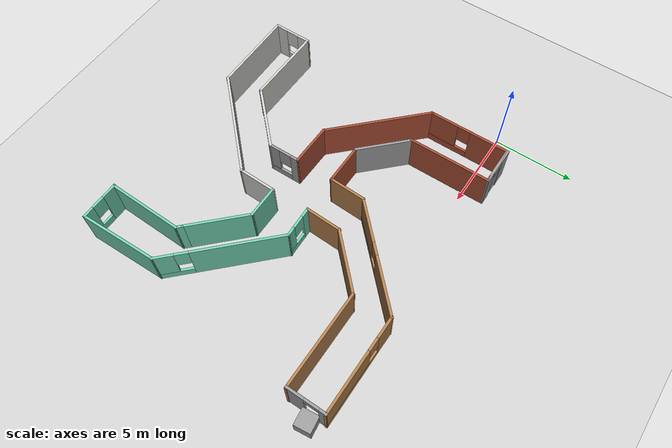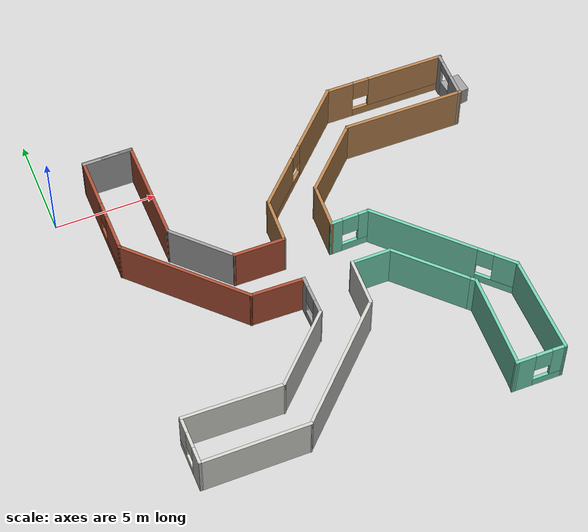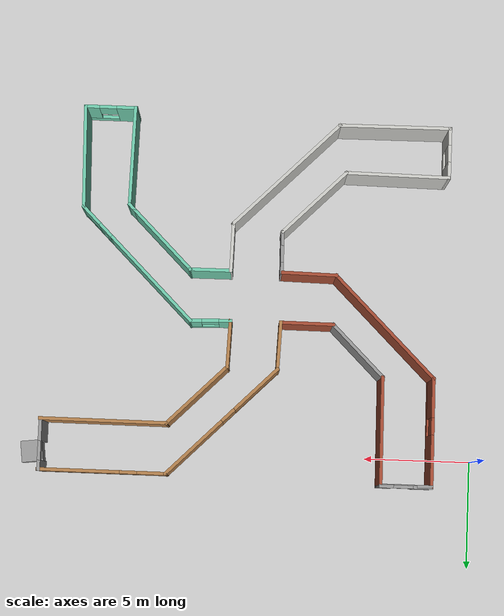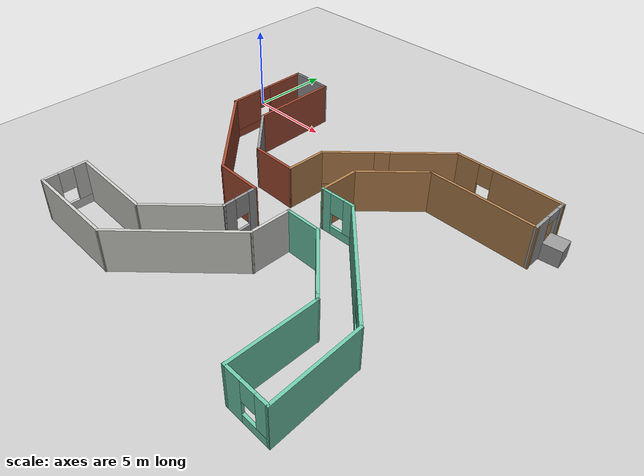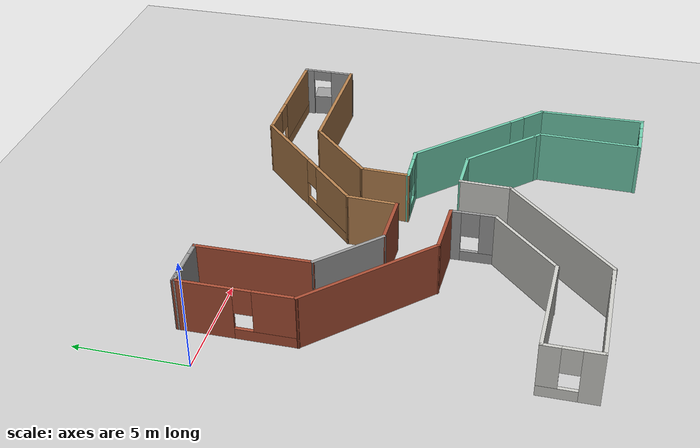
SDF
<sdf version="1.6">
 <world name="default">
  <light name="sun" type="directional">
   <pose>0 0 10 0 -0 0</pose>
   <diffuse>0.8 0.8 0.8 1</diffuse>
   <specular>0.2 0.2 0.2 1</specular>
   <attenuation>
    <range>1000</range>
    <constant>0.9</constant>
    <linear>0.01</linear>
    <quadratic>0.001</quadratic>
   </attenuation>
   <direction>-0.5 0.1 -0.9</direction>
  </light>
  <model name="ground_plane">
   <static>1</static>
   <link name="link">
    <collision name="collision">
     <geometry><plane><normal>0 0 1</normal><size>100 100</size></plane></geometry>
     <surface><friction><ode><mu>100</mu><mu2>50</mu2></ode></friction></surface>
    </collision>
    <visual name="visual">
     <cast_shadows>0</cast_shadows>
     <geometry><plane><normal>0 0 1</normal><size>100 100</size></plane></geometry>
     <material>
      <script><uri>file://media/materials/scripts/gazebo.material</uri><name>Gazebo/Grey</name></script>
     </material>
    </visual>
   </link>
  </model>
  <gravity>0 0 -9.8</gravity>
  <magnetic_field>6e-06 2.3e-05 -4.2e-05</magnetic_field>
  <atmosphere type="adiabatic"/>
  <physics name="default_physics" default="0" type="ode">
   <max_step_size>0.001</max_step_size>
   <real_time_factor>1</real_time_factor>
   <real_time_update_rate>1000</real_time_update_rate>
  </physics>
  <scene><ambient>0.4 0.4 0.4 1</ambient><background>0.7 0.7 0.7 1</background><shadows>1</shadows></scene>
  <spherical_coordinates>
   <surface_model>EARTH_WGS84</surface_model>
   <latitude_deg>0</latitude_deg>
   <longitude_deg>0</longitude_deg>
   <elevation>0</elevation>
   <heading_deg>0</heading_deg>
  </spherical_coordinates>
  <model name="WindMill">
   <pose>10.9055 -7.39571 0 0 -0 0</pose>
   <link name="Wall_100">
    <collision name="Wall_100_Collision">
     <geometry><box><size>4.25 0.15 2.5</size></box></geometry>
     <pose>0 0 1.25 0 -0 0</pose>
    </collision>
    <visual name="Wall_100_Visual">
     <pose>0 0 1.25 0 -0 0</pose>
     <geometry><box><size>4.25 0.15 2.5</size></box></geometry>
     <material>
      <script><uri>file://media/materials/scripts/gazebo.material</uri><name>Gazebo/CeilingTiled</name></script>
      <ambient>1 1 1 1</ambient>
     </material>
     <meta><layer>0</layer></meta>
    </visual>
    <pose>-3.06524 -4.47509 0 0 0 -2.35619</pose>
   </link>
   <link name="Wall_102">
    <collision name="Wall_102_Collision">
     <geometry><box><size>7 0.15 2.5</size></box></geometry>
     <pose>0 0 1.25 0 -0 0</pose>
    </collision>
    <visual name="Wall_102_Visual">
     <pose>0 0 1.25 0 -0 0</pose>
     <geometry><box><size>7 0.15 2.5</size></box></geometry>
     <material>
      <script><uri>file://media/materials/scripts/gazebo.material</uri><name>Gazebo/CeilingTiled</name></script>
      <ambient>1 1 1 1</ambient>
     </material>
     <meta><layer>0</layer></meta>
    </visual>
    <pose>-1.72023 -5.75864 0 0 0 -2.35619</pose>
   </link>
   <link name="Wall_104">
    <collision name="Wall_104_Collision">
     <geometry><box><size>2.38906 0.15 2.5</size></box></geometry>
     <pose>0 0 1.25 0 -0 0</pose>
    </collision>
    <visual name="Wall_104_Visual">
     <pose>0 0 1.25 0 -0 0</pose>
     <geometry><box><size>2.38906 0.15 2.5</size></box></geometry>
     <material>
      <script><uri>file://media/materials/scripts/gazebo.material</uri><name>Gazebo/CeilingTiled</name></script>
      <ambient>1 1 1 1</ambient>
     </material>
     <meta><layer>0</layer></meta>
    </visual>
    <pose>0.72444 -2.2175 0 0 0 -1.59119</pose>
   </link>
   <link name="Wall_106">
    <pose>-1.62639 -2.06186 0 0 0 -1.55967</pose>
    <visual name="Wall_106_Visual_0">
     <pose>-0.765548 0 1.25 0 -0 0</pose>
     <geometry><box><size>0.546348 0.15 2.5</size></box></geometry>
     <material>
      <script><uri>file://media/materials/scripts/gazebo.material</uri><name>Gazebo/Grey</name></script>
      <ambient>1 1 1 1</ambient>
     </material>
     <meta><layer>0</layer></meta>
    </visual>
    <collision name="Wall_106_Collision_0">
     <geometry><box><size>0.546348 0.15 2.5</size></box></geometry>
     <pose>-0.765548 0 1.25 0 -0 0</pose>
    </collision>
    <visual name="Wall_106_Visual_1">
     <pose>0.273174 0 0.25 0 -0 0</pose>
     <geometry><box><size>1.5311 0.15 0.5</size></box></geometry>
     <material>
      <script><uri>file://media/materials/scripts/gazebo.material</uri><name>Gazebo/Grey</name></script>
      <ambient>1 1 1 1</ambient>
     </material>
     <meta><layer>0</layer></meta>
    </visual>
    <collision name="Wall_106_Collision_1">
     <geometry><box><size>1.5311 0.15 0.5</size></box></geometry>
     <pose>0.273174 0 0.25 0 -0 0</pose>
    </collision>
    <visual name="Wall_106_Visual_2">
     <pose>0.673174 0 1.5 0 -0 0</pose>
     <geometry><box><size>0.731095 0.15 2</size></box></geometry>
     <material>
      <script><uri>file://media/materials/scripts/gazebo.material</uri><name>Gazebo/Grey</name></script>
      <ambient>1 1 1 1</ambient>
     </material>
     <meta><layer>0</layer></meta>
    </visual>
    <collision name="Wall_106_Collision_2">
     <geometry><box><size>0.731095 0.15 2</size></box></geometry>
     <pose>0.673174 0 1.5 0 -0 0</pose>
    </collision>
    <visual name="Wall_106_Visual_3">
     <pose>-0.092374 0 1.9 0 -0 0</pose>
     <geometry><box><size>0.8 0.15 1.2</size></box></geometry>
     <material>
      <script><uri>file://media/materials/scripts/gazebo.material</uri><name>Gazebo/Grey</name></script>
      <ambient>1 1 1 1</ambient>
     </material>
     <meta><layer>0</layer></meta>
    </visual>
    <collision name="Wall_106_Collision_3">
     <geometry><box><size>0.8 0.15 1.2</size></box></geometry>
     <pose>-0.092374 0 1.9 0 -0 0</pose>
    </collision>
   </link>
   <link name="Wall_108">
    <collision name="Wall_108_Collision">
     <geometry><box><size>4.94583 0.15 2.5</size></box></geometry>
     <pose>0 0 1.25 0 -0 0</pose>
    </collision>
    <visual name="Wall_108_Visual">
     <pose>0 0 1.25 0 -0 0</pose>
     <geometry><box><size>4.94583 0.15 2.5</size></box></geometry>
     <material>
      <script><uri>file://media/materials/scripts/gazebo.material</uri><name>Gazebo/CeilingTiled</name></script>
      <ambient>1 1 1 1</ambient>
     </material>
     <meta><layer>0</layer></meta>
    </visual>
    <pose>-6.91248 -5.89095 0 0 -0 3.12753</pose>
   </link>
   <link name="Wall_110">
    <collision name="Wall_110_Collision">
     <geometry><box><size>5.31815 0.15 2.5</size></box></geometry>
     <pose>0 0 1.25 0 -0 0</pose>
    </collision>
    <visual name="Wall_110_Visual">
     <pose>0 0 1.25 0 -0 0</pose>
     <geometry><box><size>5.31815 0.15 2.5</size></box></geometry>
     <material>
      <script><uri>file://media/materials/scripts/gazebo.material</uri><name>Gazebo/CeilingTiled</name></script>
      <ambient>1 1 1 1</ambient>
     </material>
     <meta><layer>0</layer></meta>
    </visual>
    <pose>-6.72612 -8.19386 0 0 0 -3.13642</pose>
   </link>
   <link name="Wall_30">
    <pose>9.298 7.2768 0 0 -0 1.5708</pose>
    <visual name="Wall_30_Visual_0">
     <pose>-0.692179 0 1.25 0 -0 0</pose>
     <geometry><box><size>1.11564 0.15 2.5</size></box></geometry>
     <material>
      <script><uri>file://media/materials/scripts/gazebo.material</uri><name>Gazebo/Grey</name></script>
      <ambient>1 1 1 1</ambient>
     </material>
     <meta><layer>0</layer></meta>
    </visual>
    <collision name="Wall_30_Collision_0">
     <geometry><box><size>1.11564 0.15 2.5</size></box></geometry>
     <pose>-0.692179 0 1.25 0 -0 0</pose>
    </collision>
    <visual name="Wall_30_Visual_1">
     <pose>1.00782 0 1.25 0 -0 0</pose>
     <geometry><box><size>0.484358 0.15 2.5</size></box></geometry>
     <material>
      <script><uri>file://media/materials/scripts/gazebo.material</uri><name>Gazebo/Grey</name></script>
      <ambient>1 1 1 1</ambient>
     </material>
     <meta><layer>0</layer></meta>
    </visual>
    <collision name="Wall_30_Collision_1">
     <geometry><box><size>0.484358 0.15 2.5</size></box></geometry>
     <pose>1.00782 0 1.25 0 -0 0</pose>
    </collision>
    <visual name="Wall_30_Visual_2">
     <pose>0.315642 0 2.25 0 -0 0</pose>
     <geometry><box><size>0.9 0.15 0.5</size></box></geometry>
     <material>
      <script><uri>file://media/materials/scripts/gazebo.material</uri><name>Gazebo/Grey</name></script>
      <ambient>1 1 1 1</ambient>
     </material>
     <meta><layer>0</layer></meta>
    </visual>
    <collision name="Wall_30_Collision_2">
     <geometry><box><size>0.9 0.15 0.5</size></box></geometry>
     <pose>0.315642 0 2.25 0 -0 0</pose>
    </collision>
   </link>
   <link name="Wall_43">
    <pose>6.67268 -8.66869 0 0 -0 0</pose>
    <visual name="Wall_43_Visual_0">
     <pose>-0.749658 0 1.25 0 -0 0</pose>
     <geometry><box><size>1.00068 0.15 2.5</size></box></geometry>
     <material>
      <script><uri>file://media/materials/scripts/gazebo.material</uri><name>Gazebo/Grey</name></script>
      <ambient>0.435294 0.796078 0.67451 1</ambient>
     </material>
     <meta><layer>0</layer></meta>
    </visual>
    <collision name="Wall_43_Collision_0">
     <geometry><box><size>1.00068 0.15 2.5</size></box></geometry>
     <pose>-0.749658 0 1.25 0 -0 0</pose>
    </collision>
    <visual name="Wall_43_Visual_1">
     <pose>0.500342 0 0.25 0 -0 0</pose>
     <geometry><box><size>1.49932 0.15 0.5</size></box></geometry>
     <material>
      <script><uri>file://media/materials/scripts/gazebo.material</uri><name>Gazebo/Grey</name></script>
      <ambient>0.435294 0.796078 0.67451 1</ambient>
     </material>
     <meta><layer>0</layer></meta>
    </visual>
    <collision name="Wall_43_Collision_1">
     <geometry><box><size>1.49932 0.15 0.5</size></box></geometry>
     <pose>0.500342 0 0.25 0 -0 0</pose>
    </collision>
    <visual name="Wall_43_Visual_2">
     <pose>0.900342 0 1.5 0 -0 0</pose>
     <geometry><box><size>0.699316 0.15 2</size></box></geometry>
     <material>
      <script><uri>file://media/materials/scripts/gazebo.material</uri><name>Gazebo/Grey</name></script>
      <ambient>0.435294 0.796078 0.67451 1</ambient>
     </material>
     <meta><layer>0</layer></meta>
    </visual>
    <collision name="Wall_43_Collision_2">
     <geometry><box><size>0.699316 0.15 2</size></box></geometry>
     <pose>0.900342 0 1.5 0 -0 0</pose>
    </collision>
    <visual name="Wall_43_Visual_3">
     <pose>0.150684 0 1.9 0 -0 0</pose>
     <geometry><box><size>0.8 0.15 1.2</size></box></geometry>
     <material>
      <script><uri>file://media/materials/scripts/gazebo.material</uri><name>Gazebo/Grey</name></script>
      <ambient>0.435294 0.796078 0.67451 1</ambient>
     </material>
     <meta><layer>0</layer></meta>
    </visual>
    <collision name="Wall_43_Collision_3">
     <geometry><box><size>0.8 0.15 1.2</size></box></geometry>
     <pose>0.150684 0 1.9 0 -0 0</pose>
    </collision>
   </link>
   <link name="Wall_50">
    <pose>-9.3329 -7.03224 0 0 -0 1.5708</pose>
    <visual name="Wall_50_Visual_0">
     <pose>-0.817635 0 1.25 0 -0 0</pose>
     <geometry><box><size>0.864729 0.15 2.5</size></box></geometry>
     <material>
      <script><uri>file://media/materials/scripts/gazebo.material</uri><name>Gazebo/CeilingTiled</name></script>
      <ambient>1 1 1 1</ambient>
     </material>
     <meta><layer>0</layer></meta>
    </visual>
    <collision name="Wall_50_Collision_0">
     <geometry><box><size>0.864729 0.15 2.5</size></box></geometry>
     <pose>-0.817635 0 1.25 0 -0 0</pose>
    </collision>
    <visual name="Wall_50_Visual_1">
     <pose>0.432365 0 0.25 0 -0 0</pose>
     <geometry><box><size>1.63527 0.15 0.5</size></box></geometry>
     <material>
      <script><uri>file://media/materials/scripts/gazebo.material</uri><name>Gazebo/CeilingTiled</name></script>
      <ambient>1 1 1 1</ambient>
     </material>
     <meta><layer>0</layer></meta>
    </visual>
    <collision name="Wall_50_Collision_1">
     <geometry><box><size>1.63527 0.15 0.5</size></box></geometry>
     <pose>0.432365 0 0.25 0 -0 0</pose>
    </collision>
    <visual name="Wall_50_Visual_2">
     <pose>0.832365 0 1.5 0 -0 0</pose>
     <geometry><box><size>0.835271 0.15 2</size></box></geometry>
     <material>
      <script><uri>file://media/materials/scripts/gazebo.material</uri><name>Gazebo/CeilingTiled</name></script>
      <ambient>1 1 1 1</ambient>
     </material>
     <meta><layer>0</layer></meta>
    </visual>
    <collision name="Wall_50_Collision_2">
     <geometry><box><size>0.835271 0.15 2</size></box></geometry>
     <pose>0.832365 0 1.5 0 -0 0</pose>
    </collision>
    <visual name="Wall_50_Visual_3">
     <pose>0.014729 0 1.9 0 -0 0</pose>
     <geometry><box><size>0.8 0.15 1.2</size></box></geometry>
     <material>
      <script><uri>file://media/materials/scripts/gazebo.material</uri><name>Gazebo/CeilingTiled</name></script>
      <ambient>1 1 1 1</ambient>
     </material>
     <meta><layer>0</layer></meta>
    </visual>
    <collision name="Wall_50_Collision_3">
     <geometry><box><size>0.8 0.15 1.2</size></box></geometry>
     <pose>0.014729 0 1.9 0 -0 0</pose>
    </collision>
   </link>
   <link name="Wall_55">
    <collision name="Wall_55_Collision">
     <geometry><box><size>2.5 0.15 2.5</size></box></geometry>
     <pose>0 0 1.25 0 -0 0</pose>
    </collision>
    <visual name="Wall_55_Visual">
     <pose>0 0 1.25 0 -0 0</pose>
     <geometry><box><size>2.5 0.15 2.5</size></box></geometry>
     <material>
      <script><uri>file://media/materials/scripts/gazebo.material</uri><name>Gazebo/Grey</name></script>
      <ambient>1 1 1 1</ambient>
     </material>
     <meta><layer>0</layer></meta>
    </visual>
    <pose>-7.70107 8.63578 0 0 -0 0</pose>
   </link>
   <link name="Wall_58">
    <collision name="Wall_58_Collision">
     <geometry><box><size>3.5 0.15 2.5</size></box></geometry>
     <pose>0 0 1.25 0 -0 0</pose>
    </collision>
    <visual name="Wall_58_Visual">
     <pose>0 0 1.25 0 -0 0</pose>
     <geometry><box><size>3.5 0.15 2.5</size></box></geometry>
     <material>
      <script><uri>file://media/materials/scripts/gazebo.material</uri><name>Gazebo/Grey</name></script>
      <ambient>1 1 1 1</ambient>
     </material>
     <meta><layer>0</layer></meta>
    </visual>
    <pose>-5.30188 2.44949 0 0 -0 2.35619</pose>
   </link>
   <link name="Wall_60">
    <collision name="Wall_60_Collision">
     <geometry><box><size>6.75 0.15 2.5</size></box></geometry>
     <pose>0 0 1.25 0 -0 0</pose>
    </collision>
    <visual name="Wall_60_Visual">
     <pose>0 0 1.25 0 -0 0</pose>
     <geometry><box><size>6.75 0.15 2.5</size></box></geometry>
     <material>
      <script><uri>file://media/materials/scripts/gazebo.material</uri><name>Gazebo/Bricks</name></script>
      <ambient>1 1 1 1</ambient>
     </material>
     <meta><layer>0</layer></meta>
    </visual>
    <pose>-6.5205 1.2855 0 0 -0 2.35619</pose>
   </link>
   <link name="Wall_62">
    <collision name="Wall_62_Collision">
     <geometry><box><size>2.59562 0.15 2.5</size></box></geometry>
     <pose>0 0 1.25 0 -0 0</pose>
    </collision>
    <visual name="Wall_62_Visual">
     <pose>0 0 1.25 0 -0 0</pose>
     <geometry><box><size>2.59562 0.15 2.5</size></box></geometry>
     <material>
      <script><uri>file://media/materials/scripts/gazebo.material</uri><name>Gazebo/Bricks</name></script>
      <ambient>1 1 1 1</ambient>
     </material>
     <meta><layer>0</layer></meta>
    </visual>
    <pose>-2.89469 1.25845 0 0 -0 3.13616</pose>
   </link>
   <link name="Wall_63">
    <collision name="Wall_63_Collision">
     <geometry><box><size>3.5 0.15 2.5</size></box></geometry>
     <pose>0 0 1.25 0 -0 0</pose>
    </collision>
    <visual name="Wall_63_Visual">
     <pose>0 0 1.25 0 -0 0</pose>
     <geometry><box><size>3.5 0.15 2.5</size></box></geometry>
     <material>
      <script><uri>file://media/materials/scripts/gazebo.material</uri><name>Gazebo/Bricks</name></script>
      <ambient>1 1 1 1</ambient>
     </material>
     <meta><layer>0</layer></meta>
    </visual>
    <pose>-5.30188 2.44949 0 0 -0 2.35619</pose>
   </link>
   <link name="Wall_64">
    <collision name="Wall_64_Collision">
     <geometry><box><size>5.15203 0.15 2.5</size></box></geometry>
     <pose>0 0 1.25 0 -0 0</pose>
    </collision>
    <visual name="Wall_64_Visual">
     <pose>0 0 1.25 0 -0 0</pose>
     <geometry><box><size>5.15203 0.15 2.5</size></box></geometry>
     <material>
      <script><uri>file://media/materials/scripts/gazebo.material</uri><name>Gazebo/Bricks</name></script>
      <ambient>1 1 1 1</ambient>
     </material>
     <meta><layer>0</layer></meta>
    </visual>
    <pose>-6.50618 6.13484 0 0 -0 1.57875</pose>
   </link>
   <link name="Wall_65">
    <pose>-7.70107 8.67036 0 0 -0 3.14159</pose>
    <visual name="Wall_65_Visual_0">
     <pose>-0.918287 0 1.25 0 -0 0</pose>
     <geometry><box><size>0.663427 0.15 2.5</size></box></geometry>
     <material>
      <script><uri>file://media/materials/scripts/gazebo.material</uri><name>Gazebo/Grey</name></script>
      <ambient>1 1 1 1</ambient>
     </material>
     <meta><layer>0</layer></meta>
    </visual>
    <collision name="Wall_65_Collision_0">
     <geometry><box><size>0.663427 0.15 2.5</size></box></geometry>
     <pose>-0.918287 0 1.25 0 -0 0</pose>
    </collision>
    <visual name="Wall_65_Visual_1">
     <pose>0.781713 0 1.25 0 -0 0</pose>
     <geometry><box><size>0.936573 0.15 2.5</size></box></geometry>
     <material>
      <script><uri>file://media/materials/scripts/gazebo.material</uri><name>Gazebo/Grey</name></script>
      <ambient>1 1 1 1</ambient>
     </material>
     <meta><layer>0</layer></meta>
    </visual>
    <collision name="Wall_65_Collision_1">
     <geometry><box><size>0.936573 0.15 2.5</size></box></geometry>
     <pose>0.781713 0 1.25 0 -0 0</pose>
    </collision>
    <visual name="Wall_65_Visual_2">
     <pose>-0.136573 0 2.25 0 -0 0</pose>
     <geometry><box><size>0.9 0.15 0.5</size></box></geometry>
     <material>
      <script><uri>file://media/materials/scripts/gazebo.material</uri><name>Gazebo/Grey</name></script>
      <ambient>1 1 1 1</ambient>
     </material>
     <meta><layer>0</layer></meta>
    </visual>
    <collision name="Wall_65_Collision_2">
     <geometry><box><size>0.9 0.15 0.5</size></box></geometry>
     <pose>-0.136573 0 2.25 0 -0 0</pose>
    </collision>
   </link>
   <link name="Wall_66">
    <pose>-8.86501 6.12736 0 0 0 -1.56639</pose>
    <visual name="Wall_66_Visual_0">
     <pose>-1.34246 0 1.25 0 -0 0</pose>
     <geometry><box><size>2.48273 0.15 2.5</size></box></geometry>
     <material>
      <script><uri>file://media/materials/scripts/gazebo.material</uri><name>Gazebo/Bricks</name></script>
      <ambient>1 1 1 1</ambient>
     </material>
     <meta><layer>0</layer></meta>
    </visual>
    <collision name="Wall_66_Collision_0">
     <geometry><box><size>2.48273 0.15 2.5</size></box></geometry>
     <pose>-1.34246 0 1.25 0 -0 0</pose>
    </collision>
    <visual name="Wall_66_Visual_1">
     <pose>1.24137 0 0.25 0 -0 0</pose>
     <geometry><box><size>2.68492 0.15 0.5</size></box></geometry>
     <material>
      <script><uri>file://media/materials/scripts/gazebo.material</uri><name>Gazebo/Bricks</name></script>
      <ambient>1 1 1 1</ambient>
     </material>
     <meta><layer>0</layer></meta>
    </visual>
    <collision name="Wall_66_Collision_1">
     <geometry><box><size>2.68492 0.15 0.5</size></box></geometry>
     <pose>1.24137 0 0.25 0 -0 0</pose>
    </collision>
    <visual name="Wall_66_Visual_2">
     <pose>1.64137 0 1.5 0 -0 0</pose>
     <geometry><box><size>1.88492 0.15 2</size></box></geometry>
     <material>
      <script><uri>file://media/materials/scripts/gazebo.material</uri><name>Gazebo/Bricks</name></script>
      <ambient>1 1 1 1</ambient>
     </material>
     <meta><layer>0</layer></meta>
    </visual>
    <collision name="Wall_66_Collision_2">
     <geometry><box><size>1.88492 0.15 2</size></box></geometry>
     <pose>1.64137 0 1.5 0 -0 0</pose>
    </collision>
    <visual name="Wall_66_Visual_3">
     <pose>0.298907 0 1.9 0 -0 0</pose>
     <geometry><box><size>0.8 0.15 1.2</size></box></geometry>
     <material>
      <script><uri>file://media/materials/scripts/gazebo.material</uri><name>Gazebo/Bricks</name></script>
      <ambient>1 1 1 1</ambient>
     </material>
     <meta><layer>0</layer></meta>
    </visual>
    <collision name="Wall_66_Collision_3">
     <geometry><box><size>0.8 0.15 1.2</size></box></geometry>
     <pose>0.298907 0 1.9 0 -0 0</pose>
    </collision>
   </link>
   <link name="Wall_68">
    <collision name="Wall_68_Collision">
     <geometry><box><size>2.70042 0.15 2.5</size></box></geometry>
     <pose>0 0 1.25 0 -0 0</pose>
    </collision>
    <visual name="Wall_68_Visual">
     <pose>0 0 1.25 0 -0 0</pose>
     <geometry><box><size>2.70042 0.15 2.5</size></box></geometry>
     <material>
      <script><uri>file://media/materials/scripts/gazebo.material</uri><name>Gazebo/Bricks</name></script>
      <ambient>1 1 1 1</ambient>
     </material>
     <meta><layer>0</layer></meta>
    </visual>
    <pose>-2.91208 -1.07308 0 0 0 -0.019703</pose>
   </link>
   <link name="Wall_70">
    <collision name="Wall_70_Collision">
     <geometry><box><size>4 0.15 2.5</size></box></geometry>
     <pose>0 0 1.25 0 -0 0</pose>
    </collision>
    <visual name="Wall_70_Visual">
     <pose>0 0 1.25 0 -0 0</pose>
     <geometry><box><size>4 0.15 2.5</size></box></geometry>
     <material>
      <script><uri>file://media/materials/scripts/gazebo.material</uri><name>Gazebo/Wood</name></script>
      <ambient>1 1 1 1</ambient>
     </material>
     <meta><layer>0</layer></meta>
    </visual>
    <pose>2.11327 4.7654 0 0 -0 0.785398</pose>
   </link>
   <link name="Wall_72">
    <pose>0.920117 5.95486 0 0 0 -2.35619</pose>
    <visual name="Wall_72_Visual_0">
     <pose>-1.80499 0 1.25 0 -0 0</pose>
     <geometry><box><size>3.64002 0.15 2.5</size></box></geometry>
     <material>
      <script><uri>file://media/materials/scripts/gazebo.material</uri><name>Gazebo/Wood</name></script>
      <ambient>1 1 1 1</ambient>
     </material>
     <meta><layer>0</layer></meta>
    </visual>
    <collision name="Wall_72_Collision_0">
     <geometry><box><size>3.64002 0.15 2.5</size></box></geometry>
     <pose>-1.80499 0 1.25 0 -0 0</pose>
    </collision>
    <visual name="Wall_72_Visual_1">
     <pose>1.82001 0 0.25 0 -0 0</pose>
     <geometry><box><size>3.60998 0.15 0.5</size></box></geometry>
     <material>
      <script><uri>file://media/materials/scripts/gazebo.material</uri><name>Gazebo/Wood</name></script>
      <ambient>1 1 1 1</ambient>
     </material>
     <meta><layer>0</layer></meta>
    </visual>
    <collision name="Wall_72_Collision_1">
     <geometry><box><size>3.60998 0.15 0.5</size></box></geometry>
     <pose>1.82001 0 0.25 0 -0 0</pose>
    </collision>
    <visual name="Wall_72_Visual_2">
     <pose>2.22001 0 1.5 0 -0 0</pose>
     <geometry><box><size>2.80998 0.15 2</size></box></geometry>
     <material>
      <script><uri>file://media/materials/scripts/gazebo.material</uri><name>Gazebo/Wood</name></script>
      <ambient>1 1 1 1</ambient>
     </material>
     <meta><layer>0</layer></meta>
    </visual>
    <collision name="Wall_72_Collision_2">
     <geometry><box><size>2.80998 0.15 2</size></box></geometry>
     <pose>2.22001 0 1.5 0 -0 0</pose>
    </collision>
    <visual name="Wall_72_Visual_3">
     <pose>0.415021 0 1.9 0 -0 0</pose>
     <geometry><box><size>0.8 0.15 1.2</size></box></geometry>
     <material>
      <script><uri>file://media/materials/scripts/gazebo.material</uri><name>Gazebo/Wood</name></script>
      <ambient>1 1 1 1</ambient>
     </material>
     <meta><layer>0</layer></meta>
    </visual>
    <collision name="Wall_72_Collision_3">
     <geometry><box><size>0.8 0.15 1.2</size></box></geometry>
     <pose>0.415021 0 1.9 0 -0 0</pose>
    </collision>
   </link>
   <link name="Wall_74">
    <pose>6.38146 8.45844 0 0 0 -0.002252</pose>
    <visual name="Wall_74_Visual_0">
     <pose>-2.32999 0 1.25 0 -0 0</pose>
     <geometry><box><size>1.39226 0.15 2.5</size></box></geometry>
     <material>
      <script><uri>file://media/materials/scripts/gazebo.material</uri><name>Gazebo/Wood</name></script>
      <ambient>1 1 1 1</ambient>
     </material>
     <meta><layer>0</layer></meta>
    </visual>
    <collision name="Wall_74_Collision_0">
     <geometry><box><size>1.39226 0.15 2.5</size></box></geometry>
     <pose>-2.32999 0 1.25 0 -0 0</pose>
    </collision>
    <visual name="Wall_74_Visual_1">
     <pose>0.696132 0 0.25 0 -0 0</pose>
     <geometry><box><size>4.65999 0.15 0.5</size></box></geometry>
     <material>
      <script><uri>file://media/materials/scripts/gazebo.material</uri><name>Gazebo/Wood</name></script>
      <ambient>1 1 1 1</ambient>
     </material>
     <meta><layer>0</layer></meta>
    </visual>
    <collision name="Wall_74_Collision_1">
     <geometry><box><size>4.65999 0.15 0.5</size></box></geometry>
     <pose>0.696132 0 0.25 0 -0 0</pose>
    </collision>
    <visual name="Wall_74_Visual_2">
     <pose>1.09613 0 1.5 0 -0 0</pose>
     <geometry><box><size>3.85999 0.15 2</size></box></geometry>
     <material>
      <script><uri>file://media/materials/scripts/gazebo.material</uri><name>Gazebo/Wood</name></script>
      <ambient>1 1 1 1</ambient>
     </material>
     <meta><layer>0</layer></meta>
    </visual>
    <collision name="Wall_74_Collision_2">
     <geometry><box><size>3.85999 0.15 2</size></box></geometry>
     <pose>1.09613 0 1.5 0 -0 0</pose>
    </collision>
    <visual name="Wall_74_Visual_3">
     <pose>-1.23386 0 1.9 0 -0 0</pose>
     <geometry><box><size>0.8 0.15 1.2</size></box></geometry>
     <material>
      <script><uri>file://media/materials/scripts/gazebo.material</uri><name>Gazebo/Wood</name></script>
      <ambient>1 1 1 1</ambient>
     </material>
     <meta><layer>0</layer></meta>
    </visual>
    <collision name="Wall_74_Collision_3">
     <geometry><box><size>0.8 0.15 1.2</size></box></geometry>
     <pose>-1.23386 0 1.9 0 -0 0</pose>
    </collision>
   </link>
   <link name="Wall_76">
    <collision name="Wall_76_Collision">
     <geometry><box><size>6.00819 0.15 2.5</size></box></geometry>
     <pose>0 0 1.25 0 -0 0</pose>
    </collision>
    <visual name="Wall_76_Visual">
     <pose>0 0 1.25 0 -0 0</pose>
     <geometry><box><size>6.00819 0.15 2.5</size></box></geometry>
     <material>
      <script><uri>file://media/materials/scripts/gazebo.material</uri><name>Gazebo/Wood</name></script>
      <ambient>1 1 1 1</ambient>
     </material>
     <meta><layer>0</layer></meta>
    </visual>
    <pose>6.40351 6.11419 0 0 0 -0.00423</pose>
   </link>
   <link name="Wall_78">
    <collision name="Wall_78_Collision">
     <geometry><box><size>2.30369 0.15 2.5</size></box></geometry>
     <pose>0 0 1.25 0 -0 0</pose>
    </collision>
    <visual name="Wall_78_Visual">
     <pose>0 0 1.25 0 -0 0</pose>
     <geometry><box><size>2.30369 0.15 2.5</size></box></geometry>
     <material>
      <script><uri>file://media/materials/scripts/gazebo.material</uri><name>Gazebo/Wood</name></script>
      <ambient>1 1 1 1</ambient>
     </material>
     <meta><layer>0</layer></meta>
    </visual>
    <pose>0.715092 2.32801 0 0 -0 1.53644</pose>
   </link>
   <link name="Wall_81">
    <collision name="Wall_81_Collision">
     <geometry><box><size>2.34436 0.15 2.5</size></box></geometry>
     <pose>0 0 1.25 0 -0 0</pose>
    </collision>
    <visual name="Wall_81_Visual">
     <pose>0 0 1.25 0 -0 0</pose>
     <geometry><box><size>2.34436 0.15 2.5</size></box></geometry>
     <material>
      <script><uri>file://media/materials/scripts/gazebo.material</uri><name>Gazebo/Wood</name></script>
      <ambient>1 1 1 1</ambient>
     </material>
     <meta><layer>0</layer></meta>
    </visual>
    <pose>-1.63101 2.34822 0 0 -0 1.53352</pose>
   </link>
   <link name="Wall_87">
    <collision name="Wall_87_Collision">
     <geometry><box><size>4 0.15 2.5</size></box></geometry>
     <pose>0 0 1.25 0 -0 0</pose>
    </collision>
    <visual name="Wall_87_Visual">
     <pose>0 0 1.25 0 -0 0</pose>
     <geometry><box><size>4 0.15 2.5</size></box></geometry>
     <material>
      <script><uri>file://media/materials/scripts/gazebo.material</uri><name>Gazebo/Grey</name></script>
      <ambient>0.435294 0.796078 0.67451 1</ambient>
     </material>
     <meta><layer>0</layer></meta>
    </visual>
    <pose>4.00039 -2.45391 0 0 0 -0.785398</pose>
   </link>
   <link name="Wall_88">
    <collision name="Wall_88_Collision">
     <geometry><box><size>0.5 0.15 2.5</size></box></geometry>
     <pose>0 0 1.25 0 -0 0</pose>
    </collision>
    <visual name="Wall_88_Visual">
     <pose>0 0 1.25 0 -0 0</pose>
     <geometry><box><size>0.5 0.15 2.5</size></box></geometry>
     <material>
      <script><uri>file://media/materials/scripts/gazebo.material</uri><name>Gazebo/Grey</name></script>
      <ambient>0.435294 0.796078 0.67451 1</ambient>
     </material>
     <meta><layer>0</layer></meta>
    </visual>
    <pose>5.48532 -3.93883 0 0 0 -0.785398</pose>
   </link>
   <link name="Wall_90">
    <pose>5.15137 -1.2876 0 0 0 -0.785398</pose>
    <visual name="Wall_90_Visual_0">
     <pose>-1.00392 0 1.25 0 -0 0</pose>
     <geometry><box><size>5.49216 0.15 2.5</size></box></geometry>
     <material>
      <script><uri>file://media/materials/scripts/gazebo.material</uri><name>Gazebo/Grey</name></script>
      <ambient>0.435294 0.796078 0.67451 1</ambient>
     </material>
     <meta><layer>0</layer></meta>
    </visual>
    <collision name="Wall_90_Collision_0">
     <geometry><box><size>5.49216 0.15 2.5</size></box></geometry>
     <pose>-1.00392 0 1.25 0 -0 0</pose>
    </collision>
    <visual name="Wall_90_Visual_1">
     <pose>2.74608 0 0.25 0 -0 0</pose>
     <geometry><box><size>2.00784 0.15 0.5</size></box></geometry>
     <material>
      <script><uri>file://media/materials/scripts/gazebo.material</uri><name>Gazebo/Grey</name></script>
      <ambient>0.435294 0.796078 0.67451 1</ambient>
     </material>
     <meta><layer>0</layer></meta>
    </visual>
    <collision name="Wall_90_Collision_1">
     <geometry><box><size>2.00784 0.15 0.5</size></box></geometry>
     <pose>2.74608 0 0.25 0 -0 0</pose>
    </collision>
    <visual name="Wall_90_Visual_2">
     <pose>3.14608 0 1.5 0 -0 0</pose>
     <geometry><box><size>1.20784 0.15 2</size></box></geometry>
     <material>
      <script><uri>file://media/materials/scripts/gazebo.material</uri><name>Gazebo/Grey</name></script>
      <ambient>0.435294 0.796078 0.67451 1</ambient>
     </material>
     <meta><layer>0</layer></meta>
    </visual>
    <collision name="Wall_90_Collision_2">
     <geometry><box><size>1.20784 0.15 2</size></box></geometry>
     <pose>3.14608 0 1.5 0 -0 0</pose>
    </collision>
    <visual name="Wall_90_Visual_3">
     <pose>2.14216 0 1.9 0 -0 0</pose>
     <geometry><box><size>0.8 0.15 1.2</size></box></geometry>
     <material>
      <script><uri>file://media/materials/scripts/gazebo.material</uri><name>Gazebo/Grey</name></script>
      <ambient>0.435294 0.796078 0.67451 1</ambient>
     </material>
     <meta><layer>0</layer></meta>
    </visual>
    <collision name="Wall_90_Collision_3">
     <geometry><box><size>0.8 0.15 1.2</size></box></geometry>
     <pose>2.14216 0 1.9 0 -0 0</pose>
    </collision>
   </link>
   <link name="Wall_92">
    <pose>1.61542 1.28141 0 0 -0 0.031577</pose>
    <visual name="Wall_92_Visual_0">
     <pose>-0.70047 0 1.25 0 -0 0</pose>
     <geometry><box><size>0.624644 0.15 2.5</size></box></geometry>
     <material>
      <script><uri>file://media/materials/scripts/gazebo.material</uri><name>Gazebo/Grey</name></script>
      <ambient>0.435294 0.796078 0.67451 1</ambient>
     </material>
     <meta><layer>0</layer></meta>
    </visual>
    <collision name="Wall_92_Collision_0">
     <geometry><box><size>0.624644 0.15 2.5</size></box></geometry>
     <pose>-0.70047 0 1.25 0 -0 0</pose>
    </collision>
    <visual name="Wall_92_Visual_1">
     <pose>0.312322 0 0.25 0 -0 0</pose>
     <geometry><box><size>1.40094 0.15 0.5</size></box></geometry>
     <material>
      <script><uri>file://media/materials/scripts/gazebo.material</uri><name>Gazebo/Grey</name></script>
      <ambient>0.435294 0.796078 0.67451 1</ambient>
     </material>
     <meta><layer>0</layer></meta>
    </visual>
    <collision name="Wall_92_Collision_1">
     <geometry><box><size>1.40094 0.15 0.5</size></box></geometry>
     <pose>0.312322 0 0.25 0 -0 0</pose>
    </collision>
    <visual name="Wall_92_Visual_2">
     <pose>0.712322 0 1.5 0 -0 0</pose>
     <geometry><box><size>0.60094 0.15 2</size></box></geometry>
     <material>
      <script><uri>file://media/materials/scripts/gazebo.material</uri><name>Gazebo/Grey</name></script>
      <ambient>0.435294 0.796078 0.67451 1</ambient>
     </material>
     <meta><layer>0</layer></meta>
    </visual>
    <collision name="Wall_92_Collision_2">
     <geometry><box><size>0.60094 0.15 2</size></box></geometry>
     <pose>0.712322 0 1.5 0 -0 0</pose>
    </collision>
    <visual name="Wall_92_Visual_3">
     <pose>0.011852 0 1.9 0 -0 0</pose>
     <geometry><box><size>0.8 0.15 1.2</size></box></geometry>
     <material>
      <script><uri>file://media/materials/scripts/gazebo.material</uri><name>Gazebo/Grey</name></script>
      <ambient>0.435294 0.796078 0.67451 1</ambient>
     </material>
     <meta><layer>0</layer></meta>
    </visual>
    <collision name="Wall_92_Collision_3">
     <geometry><box><size>0.8 0.15 1.2</size></box></geometry>
     <pose>0.011852 0 1.9 0 -0 0</pose>
    </collision>
   </link>
   <link name="Wall_94">
    <collision name="Wall_94_Collision">
     <geometry><box><size>2.04195 0.15 2.5</size></box></geometry>
     <pose>0 0 1.25 0 -0 0</pose>
    </collision>
    <visual name="Wall_94_Visual">
     <pose>0 0 1.25 0 -0 0</pose>
     <geometry><box><size>2.04195 0.15 2.5</size></box></geometry>
     <material>
      <script><uri>file://media/materials/scripts/gazebo.material</uri><name>Gazebo/Grey</name></script>
      <ambient>0.435294 0.796078 0.67451 1</ambient>
     </material>
     <meta><layer>0</layer></meta>
    </visual>
    <pose>1.69324 -1.09546 0 0 -0 0.002893</pose>
   </link>
   <link name="Wall_96">
    <collision name="Wall_96_Collision">
     <geometry><box><size>4.75746 0.15 2.5</size></box></geometry>
     <pose>0 0 1.25 0 -0 0</pose>
    </collision>
    <visual name="Wall_96_Visual">
     <pose>0 0 1.25 0 -0 0</pose>
     <geometry><box><size>4.75746 0.15 2.5</size></box></geometry>
     <material>
      <script><uri>file://media/materials/scripts/gazebo.material</uri><name>Gazebo/Grey</name></script>
      <ambient>0.435294 0.796078 0.67451 1</ambient>
     </material>
     <meta><layer>0</layer></meta>
    </visual>
    <pose>5.56474 -6.36563 0 0 0 -1.59004</pose>
   </link>
   <link name="Wall_98">
    <collision name="Wall_98_Collision">
     <geometry><box><size>4.93346 0.15 2.5</size></box></geometry>
     <pose>0 0 1.25 0 -0 0</pose>
    </collision>
    <visual name="Wall_98_Visual">
     <pose>0 0 1.25 0 -0 0</pose>
     <geometry><box><size>4.93346 0.15 2.5</size></box></geometry>
     <material>
      <script><uri>file://media/materials/scripts/gazebo.material</uri><name>Gazebo/Grey</name></script>
      <ambient>0.435294 0.796078 0.67451 1</ambient>
     </material>
     <meta><layer>0</layer></meta>
    </visual>
    <pose>7.8102 -6.27745 0 0 0 -1.54562</pose>
   </link>
   <static>1</static>
  </model>
  <model name="unit_box">
   <pose>20.7297 0.196117 0.499995 0 1e-05 0.116482</pose>
   <link name="link">
    <inertial>
     <mass>1</mass>
     <inertia>
      <ixx>0.166667</ixx>
      <ixy>0</ixy>
      <ixz>0</ixz>
      <iyy>0.166667</iyy>
      <iyz>0</iyz>
      <izz>0.166667</izz>
     </inertia>
    </inertial>
    <collision name="collision"><geometry><box><size>1 1 1</size></box></geometry></collision>
    <visual name="visual">
     <geometry><box><size>1 1 1</size></box></geometry>
     <material>
      <script><name>Gazebo/Grey</name><uri>file://media/materials/scripts/gazebo.material</uri></script>
     </material>
    </visual>
   </link>
  </model>
 </world>
</sdf>
